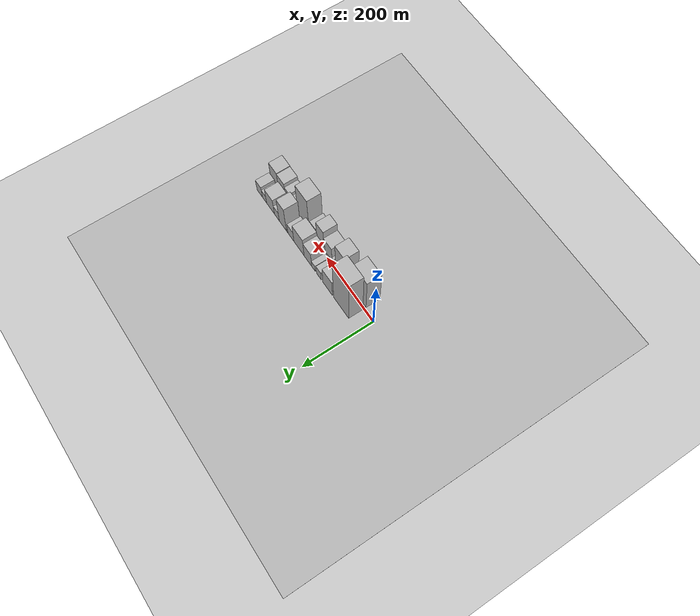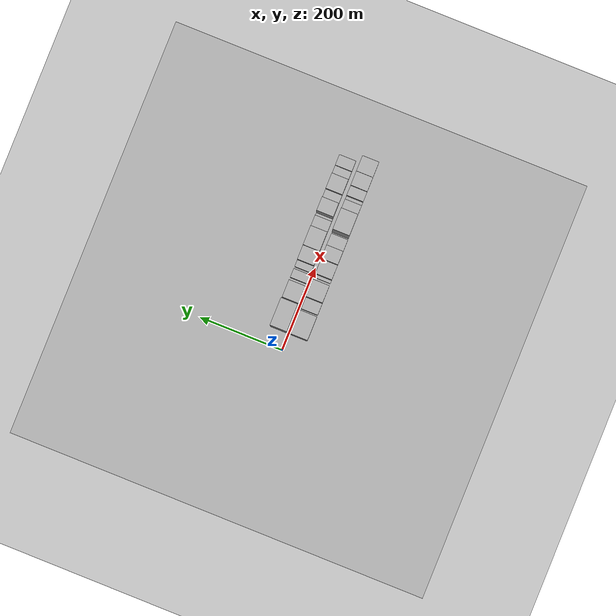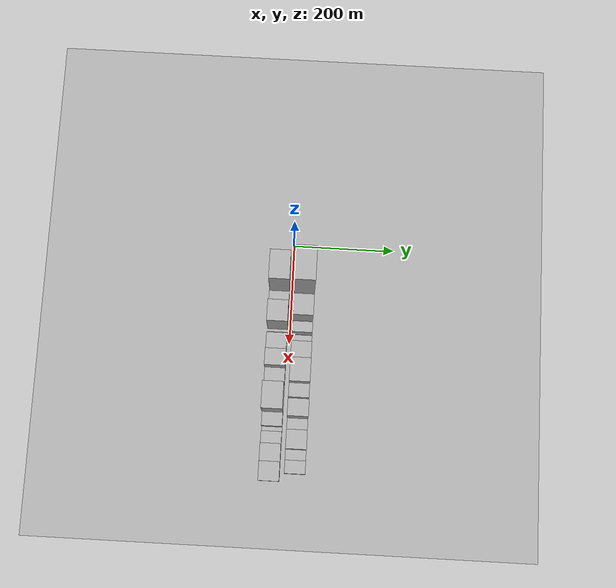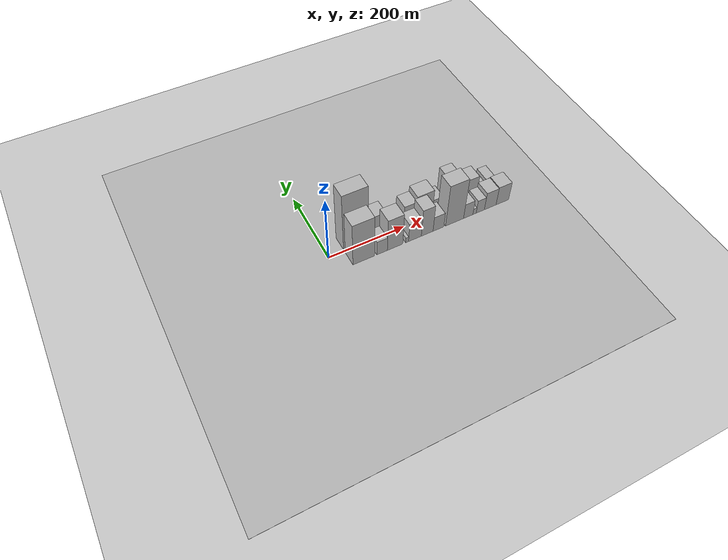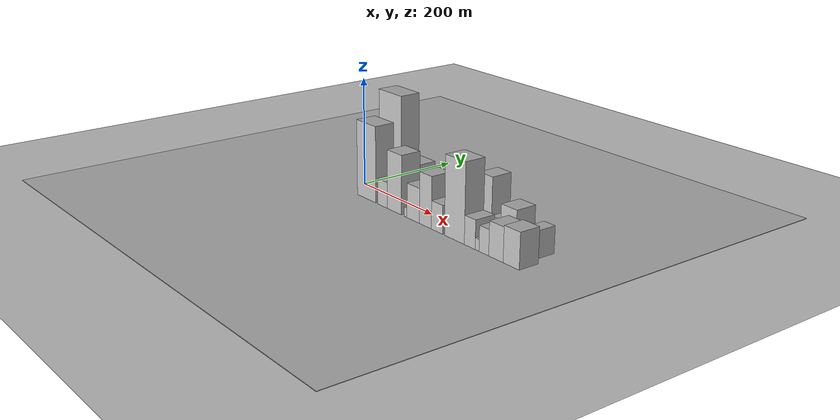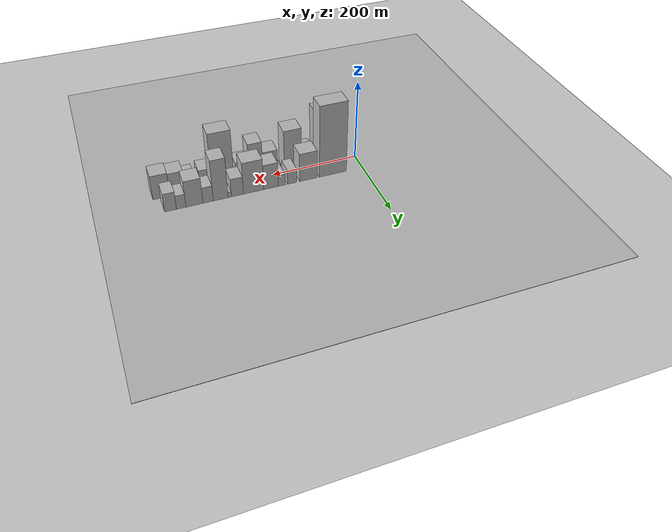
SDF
<?xml version="1.0" encoding="utf-8"?>

<sdf version="1.6">

   <world name="default">

      <gui fullscreen="0">

         <camera name="user_camera">

            <pose>-15 0 4.57585 0 0 0</pose>

            <view_controller>orbit</view_controller>

         </camera>

      </gui>

      <scene>

         <sky>

           <clouds>

             <speed>12</speed>

           </clouds>

         </sky>

         <ambient>0.4 0.4 0.4 1</ambient>

         <background>0.7 0.7 0.7 1</background>

         <shadows>1</shadows>

      </scene>

      <gravity>0 0 -9.8066</gravity>

      <magnetic_field>6e-06 2.3e-05 -4.2e-05</magnetic_field>

      <physics default="0" name="default_physics" type="ode">

         <ode>

            <solver>

               <type>quick</type>

               <iters>10</iters>

               <sor>1.0</sor>

               <use_dynamic_moi_rescaling>0</use_dynamic_moi_rescaling>

            </solver>

            <constraints>

               <cfm>0</cfm>

               <erp>0.2</erp>

               <contact_max_correcting_vel>100</contact_max_correcting_vel>

               <contact_surface_layer>0.001</contact_surface_layer>

            </constraints>

         </ode>

         <max_step_size>0.004</max_step_size>

         <real_time_factor>1</real_time_factor>

         <real_time_update_rate>250</real_time_update_rate>

      </physics>

      <light name="sun" type="directional">

         <cast_shadows>1</cast_shadows>

         <pose>0 0 10 0 0 0</pose>

         <diffuse>0.8 0.8 0.8 1</diffuse>

         <specular>0.2 0.2 0.2 1</specular>

         <attenuation>

            <range>1000</range>

            <constant>0.9</constant>

            <linear>0.01</linear>

            <quadratic>0.001</quadratic>

         </attenuation>

         <direction>-0.5 0.1 -0.9</direction>

      </light>

      <include>

         <name>ground_plane_1</name>

         <uri>model://HANNAS_ground_plane</uri>

         <pose>0 0 0  0 0 0</pose>

      </include>

      <include>

         <name>ground_plane_2</name>

         <uri>model://HANNAS_ground_plane</uri>

         <pose>100 0 0  0 0 0</pose>

      </include>

      <model name="building_1">

         <static>1</static>

         <pose frame="">72.5850 24.5000 0 0.000000 0.000000 1.570796</pose>

         <link name="link">

            <pose frame="">0 0 94.50 0 0 0</pose>

            <collision name="collision">

               <geometry>

                  <box>

                     <size>40.0000 65.1700 189.0000</size>

                  </box>

               </geometry>

               <max_contacts>10</max_contacts>

               <surface>

                  <contact>

                     <ode/>

                  </contact>

                  <bounce/>

                  <friction>

                     <torsional>

                        <ode/>

                     </torsional>

                     <ode/>

                  </friction>

               </surface>

            </collision>

            <visual name="visual">

               <cast_shadows>0</cast_shadows>

               <geometry>

                  <box>

                     <size>40.0000 65.1700 189.0000</size>

                  </box>

               </geometry>

               <material>

                  <script>

                     <uri>model://HANNAS_wall/materials/scripts</uri>

                     <uri>model://HANNAS_wall/materials/textures</uri>

                     <name>vrc/HANNAS_wall</name>

                  </script>

               </material>

            </visual>

            <self_collide>0</self_collide>

            <enable_wind>0</enable_wind>

            <kinematic>0</kinematic>

         </link>

      </model>

      <model name="building_2">

         <static>1</static>

         <pose frame="">131.0280 24.5000 0 0.000000 0.000000 1.570796</pose>

         <link name="link">

            <pose frame="">0 0 37.50 0 0 0</pose>

            <collision name="collision">

               <geometry>

                  <box>

                     <size>40.0000 41.7160 75.0000</size>

                  </box>

               </geometry>

               <max_contacts>10</max_contacts>

               <surface>

                  <contact>

                     <ode/>

                  </contact>

                  <bounce/>

                  <friction>

                     <torsional>

                        <ode/>

                     </torsional>

                     <ode/>

                  </friction>

               </surface>

            </collision>

            <visual name="visual">

               <cast_shadows>0</cast_shadows>

               <geometry>

                  <box>

                     <size>40.0000 41.7160 75.0000</size>

                  </box>

               </geometry>

               <material>

                  <script>

                     <uri>model://HANNAS_wall/materials/scripts</uri>

                     <uri>model://HANNAS_wall/materials/textures</uri>

                     <name>vrc/HANNAS_wall</name>

                  </script>

               </material>

            </visual>

            <self_collide>0</self_collide>

            <enable_wind>0</enable_wind>

            <kinematic>0</kinematic>

         </link>

      </model>

      <model name="building_3">

         <static>1</static>

         <pose frame="">169.5437 24.5000 0 0.000000 0.000000 1.570796</pose>

         <link name="link">

            <pose frame="">0 0 19.50 0 0 0</pose>

            <collision name="collision">

               <geometry>

                  <box>

                     <size>40.0000 21.3154 39.0000</size>

                  </box>

               </geometry>

               <max_contacts>10</max_contacts>

               <surface>

                  <contact>

                     <ode/>

                  </contact>

                  <bounce/>

                  <friction>

                     <torsional>

                        <ode/>

                     </torsional>

                     <ode/>

                  </friction>

               </surface>

            </collision>

            <visual name="visual">

               <cast_shadows>0</cast_shadows>

               <geometry>

                  <box>

                     <size>40.0000 21.3154 39.0000</size>

                  </box>

               </geometry>

               <material>

                  <script>

                     <uri>model://HANNAS_wall/materials/scripts</uri>

                     <uri>model://HANNAS_wall/materials/textures</uri>

                     <name>vrc/HANNAS_wall</name>

                  </script>

               </material>

            </visual>

            <self_collide>0</self_collide>

            <enable_wind>0</enable_wind>

            <kinematic>0</kinematic>

         </link>

      </model>

      <model name="building_4">

         <static>1</static>

         <pose frame="">193.3490 24.5000 0 0.000000 0.000000 1.570796</pose>

         <link name="link">

            <pose frame="">0 0 15.00 0 0 0</pose>

            <collision name="collision">

               <geometry>

                  <box>

                     <size>40.0000 16.2951 30.0000</size>

                  </box>

               </geometry>

               <max_contacts>10</max_contacts>

               <surface>

                  <contact>

                     <ode/>

                  </contact>

                  <bounce/>

                  <friction>

                     <torsional>

                        <ode/>

                     </torsional>

                     <ode/>

                  </friction>

               </surface>

            </collision>

            <visual name="visual">

               <cast_shadows>0</cast_shadows>

               <geometry>

                  <box>

                     <size>40.0000 16.2951 30.0000</size>

                  </box>

               </geometry>

               <material>

                  <script>

                     <uri>model://HANNAS_wall/materials/scripts</uri>

                     <uri>model://HANNAS_wall/materials/textures</uri>

                     <name>vrc/HANNAS_wall</name>

                  </script>

               </material>

            </visual>

            <self_collide>0</self_collide>

            <enable_wind>0</enable_wind>

            <kinematic>0</kinematic>

         </link>

      </model>

      <model name="building_5">

         <static>1</static>

         <pose frame="">218.4872 24.5000 0 0.000000 0.000000 1.570796</pose>

         <link name="link">

            <pose frame="">0 0 33.00 0 0 0</pose>

            <collision name="collision">

               <geometry>

                  <box>

                     <size>40.0000 33.9814 66.0000</size>

                  </box>

               </geometry>

               <max_contacts>10</max_contacts>

               <surface>

                  <contact>

                     <ode/>

                  </contact>

                  <bounce/>

                  <friction>

                     <torsional>

                        <ode/>

                     </torsional>

                     <ode/>

                  </friction>

               </surface>

            </collision>

            <visual name="visual">

               <cast_shadows>0</cast_shadows>

               <geometry>

                  <box>

                     <size>40.0000 33.9814 66.0000</size>

                  </box>

               </geometry>

               <material>

                  <script>

                     <uri>model://HANNAS_wall/materials/scripts</uri>

                     <uri>model://HANNAS_wall/materials/textures</uri>

                     <name>vrc/HANNAS_wall</name>

                  </script>

               </material>

            </visual>

            <self_collide>0</self_collide>

            <enable_wind>0</enable_wind>

            <kinematic>0</kinematic>

         </link>

      </model>

      <model name="building_6">

         <static>1</static>

         <pose frame="">258.4989 24.5000 0 0.000000 0.000000 1.570796</pose>

         <link name="link">

            <pose frame="">0 0 42.00 0 0 0</pose>

            <collision name="collision">

               <geometry>

                  <box>

                     <size>40.0000 46.0420 84.0000</size>

                  </box>

               </geometry>

               <max_contacts>10</max_contacts>

               <surface>

                  <contact>

                     <ode/>

                  </contact>

                  <bounce/>

                  <friction>

                     <torsional>

                        <ode/>

                     </torsional>

                     <ode/>

                  </friction>

               </surface>

            </collision>

            <visual name="visual">

               <cast_shadows>0</cast_shadows>

               <geometry>

                  <box>

                     <size>40.0000 46.0420 84.0000</size>

                  </box>

               </geometry>

               <material>

                  <script>

                     <uri>model://HANNAS_wall/materials/scripts</uri>

                     <uri>model://HANNAS_wall/materials/textures</uri>

                     <name>vrc/HANNAS_wall</name>

                  </script>

               </material>

            </visual>

            <self_collide>0</self_collide>

            <enable_wind>0</enable_wind>

            <kinematic>0</kinematic>

         </link>

      </model>

      <model name="building_7">

         <static>1</static>

         <pose frame="">295.1892 24.5000 0 0.000000 0.000000 1.570796</pose>

         <link name="link">

            <pose frame="">0 0 24.00 0 0 0</pose>

            <collision name="collision">

               <geometry>

                  <box>

                     <size>40.0000 27.3386 48.0000</size>

                  </box>

               </geometry>

               <max_contacts>10</max_contacts>

               <surface>

                  <contact>

                     <ode/>

                  </contact>

                  <bounce/>

                  <friction>

                     <torsional>

                        <ode/>

                     </torsional>

                     <ode/>

                  </friction>

               </surface>

            </collision>

            <visual name="visual">

               <cast_shadows>0</cast_shadows>

               <geometry>

                  <box>

                     <size>40.0000 27.3386 48.0000</size>

                  </box>

               </geometry>

               <material>

                  <script>

                     <uri>model://HANNAS_wall/materials/scripts</uri>

                     <uri>model://HANNAS_wall/materials/textures</uri>

                     <name>vrc/HANNAS_wall</name>

                  </script>

               </material>

            </visual>

            <self_collide>0</self_collide>

            <enable_wind>0</enable_wind>

            <kinematic>0</kinematic>

         </link>

      </model>

      <model name="building_8">

         <static>1</static>

         <pose frame="">312.5067 24.5000 0 0.000000 0.000000 1.570796</pose>

         <link name="link">

            <pose frame="">0 0 7.50 0 0 0</pose>

            <collision name="collision">

               <geometry>

                  <box>

                     <size>40.0000 7.2965 15.0000</size>

                  </box>

               </geometry>

               <max_contacts>10</max_contacts>

               <surface>

                  <contact>

                     <ode/>

                  </contact>

                  <bounce/>

                  <friction>

                     <torsional>

                        <ode/>

                     </torsional>

                     <ode/>

                  </friction>

               </surface>

            </collision>

            <visual name="visual">

               <cast_shadows>0</cast_shadows>

               <geometry>

                  <box>

                     <size>40.0000 7.2965 15.0000</size>

                  </box>

               </geometry>

               <material>

                  <script>

                     <uri>model://HANNAS_wall/materials/scripts</uri>

                     <uri>model://HANNAS_wall/materials/textures</uri>

                     <name>vrc/HANNAS_wall</name>

                  </script>

               </material>

            </visual>

            <self_collide>0</self_collide>

            <enable_wind>0</enable_wind>

            <kinematic>0</kinematic>

         </link>

      </model>

      <model name="building_9">

         <static>1</static>

         <pose frame="">332.6536 24.5000 0 0.000000 0.000000 1.570796</pose>

         <link name="link">

            <pose frame="">0 0 54.00 0 0 0</pose>

            <collision name="collision">

               <geometry>

                  <box>

                     <size>40.0000 32.9972 108.0000</size>

                  </box>

               </geometry>

               <max_contacts>10</max_contacts>

               <surface>

                  <contact>

                     <ode/>

                  </contact>

                  <bounce/>

                  <friction>

                     <torsional>

                        <ode/>

                     </torsional>

                     <ode/>

                  </friction>

               </surface>

            </collision>

            <visual name="visual">

               <cast_shadows>0</cast_shadows>

               <geometry>

                  <box>

                     <size>40.0000 32.9972 108.0000</size>

                  </box>

               </geometry>

               <material>

                  <script>

                     <uri>model://HANNAS_wall/materials/scripts</uri>

                     <uri>model://HANNAS_wall/materials/textures</uri>

                     <name>vrc/HANNAS_wall</name>

                  </script>

               </material>

            </visual>

            <self_collide>0</self_collide>

            <enable_wind>0</enable_wind>

            <kinematic>0</kinematic>

         </link>

      </model>

      <model name="building_10">

         <static>1</static>

         <pose frame="">360.5683 24.5000 0 0.000000 0.000000 1.570796</pose>

         <link name="link">

            <pose frame="">0 0 21.00 0 0 0</pose>

            <collision name="collision">

               <geometry>

                  <box>

                     <size>40.0000 22.8323 42.0000</size>

                  </box>

               </geometry>

               <max_contacts>10</max_contacts>

               <surface>

                  <contact>

                     <ode/>

                  </contact>

                  <bounce/>

                  <friction>

                     <torsional>

                        <ode/>

                     </torsional>

                     <ode/>

                  </friction>

               </surface>

            </collision>

            <visual name="visual">

               <cast_shadows>0</cast_shadows>

               <geometry>

                  <box>

                     <size>40.0000 22.8323 42.0000</size>

                  </box>

               </geometry>

               <material>

                  <script>

                     <uri>model://HANNAS_wall/materials/scripts</uri>

                     <uri>model://HANNAS_wall/materials/textures</uri>

                     <name>vrc/HANNAS_wall</name>

                  </script>

               </material>

            </visual>

            <self_collide>0</self_collide>

            <enable_wind>0</enable_wind>

            <kinematic>0</kinematic>

         </link>

      </model>

      <model name="building_11">

         <static>1</static>

         <pose frame="">390.4581 24.5000 0 0.000000 0.000000 1.570796</pose>

         <link name="link">

            <pose frame="">0 0 34.50 0 0 0</pose>

            <collision name="collision">

               <geometry>

                  <box>

                     <size>40.0000 36.9472 69.0000</size>

                  </box>

               </geometry>

               <max_contacts>10</max_contacts>

               <surface>

                  <contact>

                     <ode/>

                  </contact>

                  <bounce/>

                  <friction>

                     <torsional>

                        <ode/>

                     </torsional>

                     <ode/>

                  </friction>

               </surface>

            </collision>

            <visual name="visual">

               <cast_shadows>0</cast_shadows>

               <geometry>

                  <box>

                     <size>40.0000 36.9472 69.0000</size>

                  </box>

               </geometry>

               <material>

                  <script>

                     <uri>model://HANNAS_wall/materials/scripts</uri>

                     <uri>model://HANNAS_wall/materials/textures</uri>

                     <name>vrc/HANNAS_wall</name>

                  </script>

               </material>

            </visual>

            <self_collide>0</self_collide>

            <enable_wind>0</enable_wind>

            <kinematic>0</kinematic>

         </link>

      </model>

      <model name="building_12">

         <static>1</static>

         <pose frame="">419.2174 24.5000 0 0.000000 0.000000 1.570796</pose>

         <link name="link">

            <pose frame="">0 0 18.00 0 0 0</pose>

            <collision name="collision">

               <geometry>

                  <box>

                     <size>40.0000 20.5715 36.0000</size>

                  </box>

               </geometry>

               <max_contacts>10</max_contacts>

               <surface>

                  <contact>

                     <ode/>

                  </contact>

                  <bounce/>

                  <friction>

                     <torsional>

                        <ode/>

                     </torsional>

                     <ode/>

                  </friction>

               </surface>

            </collision>

            <visual name="visual">

               <cast_shadows>0</cast_shadows>

               <geometry>

                  <box>

                     <size>40.0000 20.5715 36.0000</size>

                  </box>

               </geometry>

               <material>

                  <script>

                     <uri>model://HANNAS_wall/materials/scripts</uri>

                     <uri>model://HANNAS_wall/materials/textures</uri>

                     <name>vrc/HANNAS_wall</name>

                  </script>

               </material>

            </visual>

            <self_collide>0</self_collide>

            <enable_wind>0</enable_wind>

            <kinematic>0</kinematic>

         </link>

      </model>

      <model name="building_13">

         <static>1</static>

         <pose frame="">442.2810 24.5000 0 0.000000 0.000000 1.570796</pose>

         <link name="link">

            <pose frame="">0 0 24.00 0 0 0</pose>

            <collision name="collision">

               <geometry>

                  <box>

                     <size>40.0000 25.5558 48.0000</size>

                  </box>

               </geometry>

               <max_contacts>10</max_contacts>

               <surface>

                  <contact>

                     <ode/>

                  </contact>

                  <bounce/>

                  <friction>

                     <torsional>

                        <ode/>

                     </torsional>

                     <ode/>

                  </friction>

               </surface>

            </collision>

            <visual name="visual">

               <cast_shadows>0</cast_shadows>

               <geometry>

                  <box>

                     <size>40.0000 25.5558 48.0000</size>

                  </box>

               </geometry>

               <material>

                  <script>

                     <uri>model://HANNAS_wall/materials/scripts</uri>

                     <uri>model://HANNAS_wall/materials/textures</uri>

                     <name>vrc/HANNAS_wall</name>

                  </script>

               </material>

            </visual>

            <self_collide>0</self_collide>

            <enable_wind>0</enable_wind>

            <kinematic>0</kinematic>

         </link>

      </model>

      <model name="building_14">

         <static>1</static>

         <pose frame="">68.1903 -24.5000 0 0.000000 0.000000 1.570796</pose>

         <link name="link">

            <pose frame="">0 0 70.50 0 0 0</pose>

            <collision name="collision">

               <geometry>

                  <box>

                     <size>40.0000 56.3806 141.0000</size>

                  </box>

               </geometry>

               <max_contacts>10</max_contacts>

               <surface>

                  <contact>

                     <ode/>

                  </contact>

                  <bounce/>

                  <friction>

                     <torsional>

                        <ode/>

                     </torsional>

                     <ode/>

                  </friction>

               </surface>

            </collision>

            <visual name="visual">

               <cast_shadows>0</cast_shadows>

               <geometry>

                  <box>

                     <size>40.0000 56.3806 141.0000</size>

                  </box>

               </geometry>

               <material>

                  <script>

                     <uri>model://HANNAS_wall/materials/scripts</uri>

                     <uri>model://HANNAS_wall/materials/textures</uri>

                     <name>vrc/HANNAS_wall</name>

                  </script>

               </material>

            </visual>

            <self_collide>0</self_collide>

            <enable_wind>0</enable_wind>

            <kinematic>0</kinematic>

         </link>

      </model>

      <model name="building_15">

         <static>1</static>

         <pose frame="">116.2523 -24.5000 0 0.000000 0.000000 1.570796</pose>

         <link name="link">

            <pose frame="">0 0 24.00 0 0 0</pose>

            <collision name="collision">

               <geometry>

                  <box>

                     <size>40.0000 27.7434 48.0000</size>

                  </box>

               </geometry>

               <max_contacts>10</max_contacts>

               <surface>

                  <contact>

                     <ode/>

                  </contact>

                  <bounce/>

                  <friction>

                     <torsional>

                        <ode/>

                     </torsional>

                     <ode/>

                  </friction>

               </surface>

            </collision>

            <visual name="visual">

               <cast_shadows>0</cast_shadows>

               <geometry>

                  <box>

                     <size>40.0000 27.7434 48.0000</size>

                  </box>

               </geometry>

               <material>

                  <script>

                     <uri>model://HANNAS_wall/materials/scripts</uri>

                     <uri>model://HANNAS_wall/materials/textures</uri>

                     <name>vrc/HANNAS_wall</name>

                  </script>

               </material>

            </visual>

            <self_collide>0</self_collide>

            <enable_wind>0</enable_wind>

            <kinematic>0</kinematic>

         </link>

      </model>

      <model name="building_16">

         <static>1</static>

         <pose frame="">150.7650 -24.5000 0 0.000000 0.000000 1.570796</pose>

         <link name="link">

            <pose frame="">0 0 54.00 0 0 0</pose>

            <collision name="collision">

               <geometry>

                  <box>

                     <size>40.0000 41.2820 108.0000</size>

                  </box>

               </geometry>

               <max_contacts>10</max_contacts>

               <surface>

                  <contact>

                     <ode/>

                  </contact>

                  <bounce/>

                  <friction>

                     <torsional>

                        <ode/>

                     </torsional>

                     <ode/>

                  </friction>

               </surface>

            </collision>

            <visual name="visual">

               <cast_shadows>0</cast_shadows>

               <geometry>

                  <box>

                     <size>40.0000 41.2820 108.0000</size>

                  </box>

               </geometry>

               <material>

                  <script>

                     <uri>model://HANNAS_wall/materials/scripts</uri>

                     <uri>model://HANNAS_wall/materials/textures</uri>

                     <name>vrc/HANNAS_wall</name>

                  </script>

               </material>

            </visual>

            <self_collide>0</self_collide>

            <enable_wind>0</enable_wind>

            <kinematic>0</kinematic>

         </link>

      </model>

      <model name="building_17">

         <static>1</static>

         <pose frame="">183.2166 -24.5000 0 0.000000 0.000000 1.570796</pose>

         <link name="link">

            <pose frame="">0 0 9.00 0 0 0</pose>

            <collision name="collision">

               <geometry>

                  <box>

                     <size>40.0000 7.6210 18.0000</size>

                  </box>

               </geometry>

               <max_contacts>10</max_contacts>

               <surface>

                  <contact>

                     <ode/>

                  </contact>

                  <bounce/>

                  <friction>

                     <torsional>

                        <ode/>

                     </torsional>

                     <ode/>

                  </friction>

               </surface>

            </collision>

            <visual name="visual">

               <cast_shadows>0</cast_shadows>

               <geometry>

                  <box>

                     <size>40.0000 7.6210 18.0000</size>

                  </box>

               </geometry>

               <material>

                  <script>

                     <uri>model://HANNAS_wall/materials/scripts</uri>

                     <uri>model://HANNAS_wall/materials/textures</uri>

                     <name>vrc/HANNAS_wall</name>

                  </script>

               </material>

            </visual>

            <self_collide>0</self_collide>

            <enable_wind>0</enable_wind>

            <kinematic>0</kinematic>

         </link>

      </model>

      <model name="building_18">

         <static>1</static>

         <pose frame="">204.4127 -24.5000 0 0.000000 0.000000 1.570796</pose>

         <link name="link">

            <pose frame="">0 0 31.50 0 0 0</pose>

            <collision name="collision">

               <geometry>

                  <box>

                     <size>40.0000 34.7712 63.0000</size>

                  </box>

               </geometry>

               <max_contacts>10</max_contacts>

               <surface>

                  <contact>

                     <ode/>

                  </contact>

                  <bounce/>

                  <friction>

                     <torsional>

                        <ode/>

                     </torsional>

                     <ode/>

                  </friction>

               </surface>

            </collision>

            <visual name="visual">

               <cast_shadows>0</cast_shadows>

               <geometry>

                  <box>

                     <size>40.0000 34.7712 63.0000</size>

                  </box>

               </geometry>

               <material>

                  <script>

                     <uri>model://HANNAS_wall/materials/scripts</uri>

                     <uri>model://HANNAS_wall/materials/textures</uri>

                     <name>vrc/HANNAS_wall</name>

                  </script>

               </material>

            </visual>

            <self_collide>0</self_collide>

            <enable_wind>0</enable_wind>

            <kinematic>0</kinematic>

         </link>

      </model>

      <model name="building_19">

         <static>1</static>

         <pose frame="">237.9651 -24.5000 0 0.000000 0.000000 1.570796</pose>

         <link name="link">

            <pose frame="">0 0 46.50 0 0 0</pose>

            <collision name="collision">

               <geometry>

                  <box>

                     <size>40.0000 32.3336 93.0000</size>

                  </box>

               </geometry>

               <max_contacts>10</max_contacts>

               <surface>

                  <contact>

                     <ode/>

                  </contact>

                  <bounce/>

                  <friction>

                     <torsional>

                        <ode/>

                     </torsional>

                     <ode/>

                  </friction>

               </surface>

            </collision>

            <visual name="visual">

               <cast_shadows>0</cast_shadows>

               <geometry>

                  <box>

                     <size>40.0000 32.3336 93.0000</size>

                  </box>

               </geometry>

               <material>

                  <script>

                     <uri>model://HANNAS_wall/materials/scripts</uri>

                     <uri>model://HANNAS_wall/materials/textures</uri>

                     <name>vrc/HANNAS_wall</name>

                  </script>

               </material>

            </visual>

            <self_collide>0</self_collide>

            <enable_wind>0</enable_wind>

            <kinematic>0</kinematic>

         </link>

      </model>

      <model name="building_20">

         <static>1</static>

         <pose frame="">269.1109 -24.5000 0 0.000000 0.000000 1.570796</pose>

         <link name="link">

            <pose frame="">0 0 25.50 0 0 0</pose>

            <collision name="collision">

               <geometry>

                  <box>

                     <size>40.0000 29.9581 51.0000</size>

                  </box>

               </geometry>

               <max_contacts>10</max_contacts>

               <surface>

                  <contact>

                     <ode/>

                  </contact>

                  <bounce/>

                  <friction>

                     <torsional>

                        <ode/>

                     </torsional>

                     <ode/>

                  </friction>

               </surface>

            </collision>

            <visual name="visual">

               <cast_shadows>0</cast_shadows>

               <geometry>

                  <box>

                     <size>40.0000 29.9581 51.0000</size>

                  </box>

               </geometry>

               <material>

                  <script>

                     <uri>model://HANNAS_wall/materials/scripts</uri>

                     <uri>model://HANNAS_wall/materials/textures</uri>

                     <name>vrc/HANNAS_wall</name>

                  </script>

               </material>

            </visual>

            <self_collide>0</self_collide>

            <enable_wind>0</enable_wind>

            <kinematic>0</kinematic>

         </link>

      </model>

      <model name="building_21">

         <static>1</static>

         <pose frame="">314.4911 -24.5000 0 0.000000 0.000000 1.570796</pose>

         <link name="link">

            <pose frame="">0 0 70.50 0 0 0</pose>

            <collision name="collision">

               <geometry>

                  <box>

                     <size>40.0000 50.8022 141.0000</size>

                  </box>

               </geometry>

               <max_contacts>10</max_contacts>

               <surface>

                  <contact>

                     <ode/>

                  </contact>

                  <bounce/>

                  <friction>

                     <torsional>

                        <ode/>

                     </torsional>

                     <ode/>

                  </friction>

               </surface>

            </collision>

            <visual name="visual">

               <cast_shadows>0</cast_shadows>

               <geometry>

                  <box>

                     <size>40.0000 50.8022 141.0000</size>

                  </box>

               </geometry>

               <material>

                  <script>

                     <uri>model://HANNAS_wall/materials/scripts</uri>

                     <uri>model://HANNAS_wall/materials/textures</uri>

                     <name>vrc/HANNAS_wall</name>

                  </script>

               </material>

            </visual>

            <self_collide>0</self_collide>

            <enable_wind>0</enable_wind>

            <kinematic>0</kinematic>

         </link>

      </model>

      <model name="building_22">

         <static>1</static>

         <pose frame="">353.3153 -24.5000 0 0.000000 0.000000 1.570796</pose>

         <link name="link">

            <pose frame="">0 0 25.50 0 0 0</pose>

            <collision name="collision">

               <geometry>

                  <box>

                     <size>40.0000 26.8462 51.0000</size>

                  </box>

               </geometry>

               <max_contacts>10</max_contacts>

               <surface>

                  <contact>

                     <ode/>

                  </contact>

                  <bounce/>

                  <friction>

                     <torsional>

                        <ode/>

                     </torsional>

                     <ode/>

                  </friction>

               </surface>

            </collision>

            <visual name="visual">

               <cast_shadows>0</cast_shadows>

               <geometry>

                  <box>

                     <size>40.0000 26.8462 51.0000</size>

                  </box>

               </geometry>

               <material>

                  <script>

                     <uri>model://HANNAS_wall/materials/scripts</uri>

                     <uri>model://HANNAS_wall/materials/textures</uri>

                     <name>vrc/HANNAS_wall</name>

                  </script>

               </material>

            </visual>

            <self_collide>0</self_collide>

            <enable_wind>0</enable_wind>

            <kinematic>0</kinematic>

         </link>

      </model>

      <model name="building_23">

         <static>1</static>

         <pose frame="">371.5127 -24.5000 0 0.000000 0.000000 1.570796</pose>

         <link name="link">

            <pose frame="">0 0 10.50 0 0 0</pose>

            <collision name="collision">

               <geometry>

                  <box>

                     <size>40.0000 9.5486 21.0000</size>

                  </box>

               </geometry>

               <max_contacts>10</max_contacts>

               <surface>

                  <contact>

                     <ode/>

                  </contact>

                  <bounce/>

                  <friction>

                     <torsional>

                        <ode/>

                     </torsional>

                     <ode/>

                  </friction>

               </surface>

            </collision>

            <visual name="visual">

               <cast_shadows>0</cast_shadows>

               <geometry>

                  <box>

                     <size>40.0000 9.5486 21.0000</size>

                  </box>

               </geometry>

               <material>

                  <script>

                     <uri>model://HANNAS_wall/materials/scripts</uri>

                     <uri>model://HANNAS_wall/materials/textures</uri>

                     <name>vrc/HANNAS_wall</name>

                  </script>

               </material>

            </visual>

            <self_collide>0</self_collide>

            <enable_wind>0</enable_wind>

            <kinematic>0</kinematic>

         </link>

      </model>

      <model name="building_24">

         <static>1</static>

         <pose frame="">388.0418 -24.5000 0 0.000000 0.000000 1.570796</pose>

         <link name="link">

            <pose frame="">0 0 22.50 0 0 0</pose>

            <collision name="collision">

               <geometry>

                  <box>

                     <size>40.0000 23.5097 45.0000</size>

                  </box>

               </geometry>

               <max_contacts>10</max_contacts>

               <surface>

                  <contact>

                     <ode/>

                  </contact>

                  <bounce/>

                  <friction>

                     <torsional>

                        <ode/>

                     </torsional>

                     <ode/>

                  </friction>

               </surface>

            </collision>

            <visual name="visual">

               <cast_shadows>0</cast_shadows>

               <geometry>

                  <box>

                     <size>40.0000 23.5097 45.0000</size>

                  </box>

               </geometry>

               <material>

                  <script>

                     <uri>model://HANNAS_wall/materials/scripts</uri>

                     <uri>model://HANNAS_wall/materials/textures</uri>

                     <name>vrc/HANNAS_wall</name>

                  </script>

               </material>

            </visual>

            <self_collide>0</self_collide>

            <enable_wind>0</enable_wind>

            <kinematic>0</kinematic>

         </link>

      </model>

      <model name="building_25">

         <static>1</static>

         <pose frame="">416.8328 -24.5000 0 0.000000 0.000000 1.570796</pose>

         <link name="link">

            <pose frame="">0 0 30.00 0 0 0</pose>

            <collision name="collision">

               <geometry>

                  <box>

                     <size>40.0000 34.0722 60.0000</size>

                  </box>

               </geometry>

               <max_contacts>10</max_contacts>

               <surface>

                  <contact>

                     <ode/>

                  </contact>

                  <bounce/>

                  <friction>

                     <torsional>

                        <ode/>

                     </torsional>

                     <ode/>

                  </friction>

               </surface>

            </collision>

            <visual name="visual">

               <cast_shadows>0</cast_shadows>

               <geometry>

                  <box>

                     <size>40.0000 34.0722 60.0000</size>

                  </box>

               </geometry>

               <material>

                  <script>

                     <uri>model://HANNAS_wall/materials/scripts</uri>

                     <uri>model://HANNAS_wall/materials/textures</uri>

                     <name>vrc/HANNAS_wall</name>

                  </script>

               </material>

            </visual>

            <self_collide>0</self_collide>

            <enable_wind>0</enable_wind>

            <kinematic>0</kinematic>

         </link>

      </model>

      <model name="building_26">

         <static>1</static>

         <pose frame="">452.4077 -24.5000 0 0.000000 0.000000 1.570796</pose>

         <link name="link">

            <pose frame="">0 0 31.50 0 0 0</pose>

            <collision name="collision">

               <geometry>

                  <box>

                     <size>40.0000 37.0777 63.0000</size>

                  </box>

               </geometry>

               <max_contacts>10</max_contacts>

               <surface>

                  <contact>

                     <ode/>

                  </contact>

                  <bounce/>

                  <friction>

                     <torsional>

                        <ode/>

                     </torsional>

                     <ode/>

                  </friction>

               </surface>

            </collision>

            <visual name="visual">

               <cast_shadows>0</cast_shadows>

               <geometry>

                  <box>

                     <size>40.0000 37.0777 63.0000</size>

                  </box>

               </geometry>

               <material>

                  <script>

                     <uri>model://HANNAS_wall/materials/scripts</uri>

                     <uri>model://HANNAS_wall/materials/textures</uri>

                     <name>vrc/HANNAS_wall</name>

                  </script>

               </material>

            </visual>

            <self_collide>0</self_collide>

            <enable_wind>0</enable_wind>

            <kinematic>0</kinematic>

         </link>

      </model>

   </world>

</sdf>

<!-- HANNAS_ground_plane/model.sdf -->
<sdf version="1.4">
<model name="HANNAS_ground_plane">
  <static>true</static>
    <link name="link">
      <collision name="collision">
        <geometry>
          <plane>
            <normal>0 0 1</normal>
            <size>1000 1000</size>
          </plane>
        </geometry>
        <surface>
          <friction>
            <ode>
              <mu>100</mu>
              <mu2>50</mu2>
            </ode>
          </friction>
        </surface>
      </collision>
      <visual name="visual">
        <cast_shadows>false</cast_shadows>
        <geometry>
          <plane>
            <normal>0 0 1</normal>
            <size>1000 1000</size>
          </plane>
        </geometry>
        <material>
          <script>
            <uri>model://HANNAS_ground_plane/materials/scripts/HANNAS_ground_plane.material</uri>
	    <uri>model://HANNAS_ground_plane/materials/textures</uri>
            <name>HANNASGroundPlane/Image</name>
          </script>
        </material>
      </visual>
    </link>
  </model>
</sdf>
